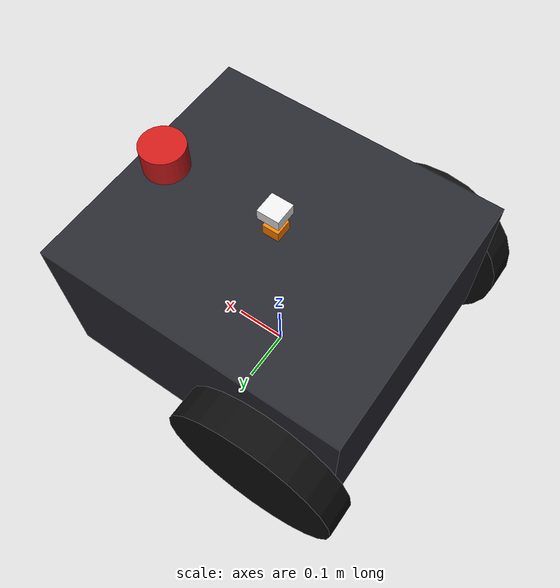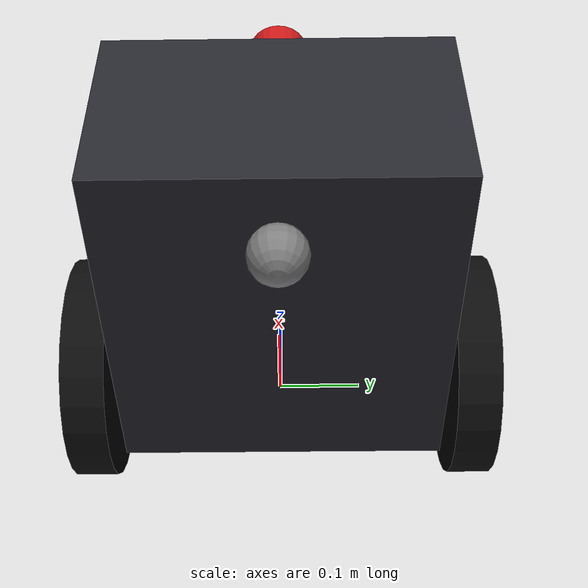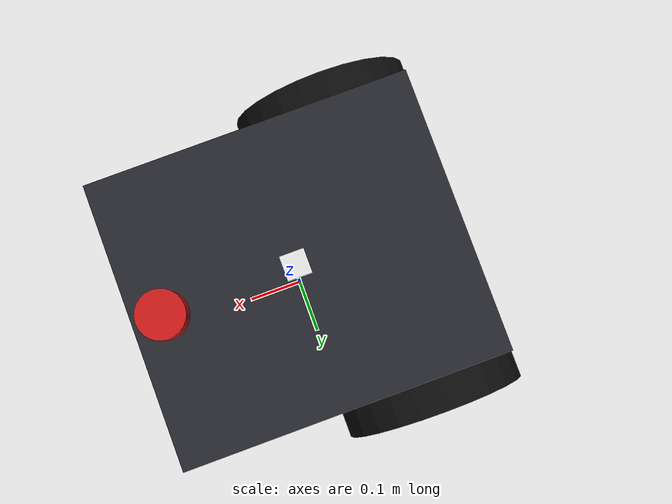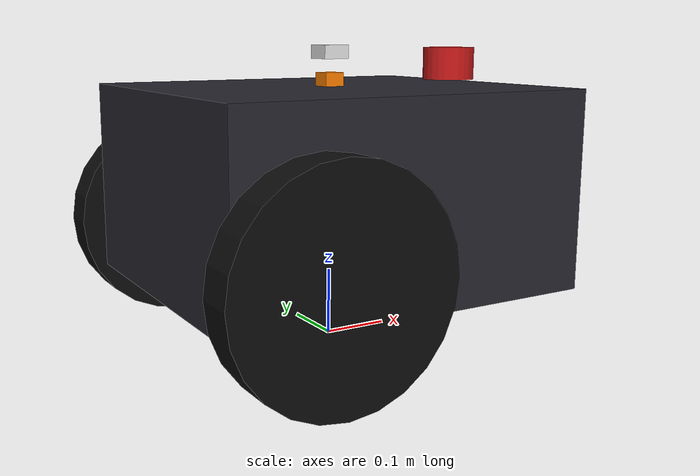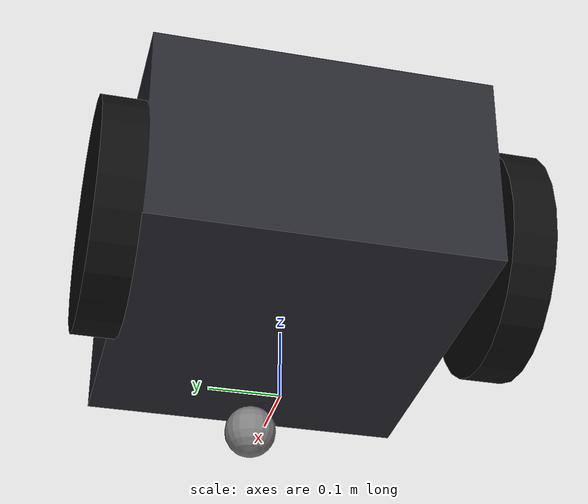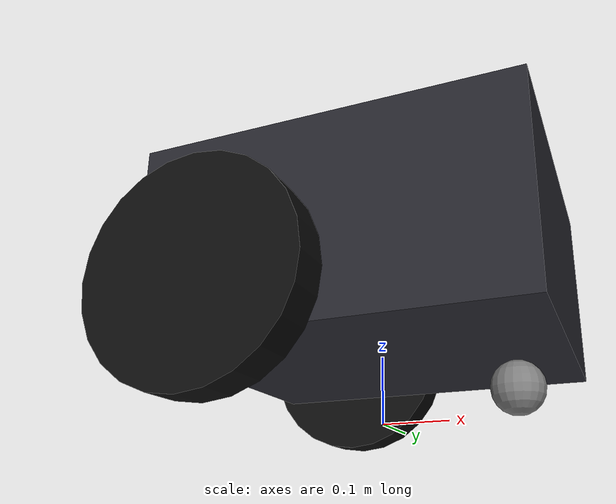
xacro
<?xml version="1.0"?>
<robot name="mercury" xmlns:xacro="http://www.ros.org/wiki/xacro">

  <!-- ================= BASE CHASSIS ================= -->
  <!-- Dimensions: length=55cm (0.55m), width=48cm (0.48m), height=29cm (0.29m) -->
  <!-- Ground clearance: 9cm (0.09m) -->
  <!-- Center of chassis box z = 0.09 + (0.29 / 2) = 0.235m -->
  <link name="base_link">
    <visual>
      <geometry>
        <box size="0.55 0.48 0.29"/>
      </geometry>
      <origin xyz="0 0 0.235" rpy="0 0 0"/>
      <material name="chassis_color">
        <color rgba="0.15 0.15 0.18 1.0"/>
      </material>
    </visual>
  </link>

  <!-- ================= LEFT DRIVE WHEEL ================= -->
  <!-- Diameter = 32cm -> radius = 16cm (0.16m), width = 6cm (0.06m) -->
  <!-- Wheel center z = 0.16m (touches ground at z=0) -->
  <!-- Separation = 54cm (0.54m) -> y = +0.27m -->
  <!-- Note: joint type is "fixed" because there are no physical wheel encoders. -->
  <!-- This allows robot_state_publisher to broadcast the static TF without waiting for encoder /joint_states -->
  <link name="left_wheel_link">
    <visual>
      <origin xyz="0 0 0" rpy="1.5708 0 0"/>
      <geometry>
        <cylinder radius="0.16" length="0.06"/>
      </geometry>
      <material name="wheel_black">
        <color rgba="0.05 0.05 0.05 1.0"/>
      </material>
    </visual>
  </link>

  <joint name="left_wheel_joint" type="fixed">
    <parent link="base_link"/>
    <child link="left_wheel_link"/>
    <origin xyz="-0.15 0.27 0.16" rpy="0 0 0"/>
  </joint>

  <!-- ================= RIGHT DRIVE WHEEL ================= -->
  <!-- Separation = 54cm (0.54m) -> y = -0.27m -->
  <link name="right_wheel_link">
    <visual>
      <origin xyz="0 0 0" rpy="1.5708 0 0"/>
      <geometry>
        <cylinder radius="0.16" length="0.06"/>
      </geometry>
      <material name="wheel_black">
        <color rgba="0.05 0.05 0.05 1.0"/>
      </material>
    </visual>
  </link>

  <joint name="right_wheel_joint" type="fixed">
    <parent link="base_link"/>
    <child link="right_wheel_link"/>
    <origin xyz="-0.15 -0.27 0.16" rpy="0 0 0"/>
  </joint>

  <!-- ================= FRONT CASTOR WHEEL ================= -->
  <!-- Castor radius = 3.9cm (0.039m), touches ground at z=0 (origin z = 0.039m) -->
  <!-- Positioned at front: x = +0.20m, y = 0.0m -->
  <link name="castor_wheel_link">
    <visual>
      <geometry>
        <sphere radius="0.039"/>
      </geometry>
      <origin xyz="0 0 0" rpy="0 0 0"/>
      <material name="castor_gray">
        <color rgba="0.5 0.5 0.5 1.0"/>
      </material>
    </visual>
  </link>

  <joint name="castor_wheel_joint" type="fixed">
    <parent link="base_link"/>
    <child link="castor_wheel_link"/>
    <origin xyz="0.20 0.0 0.039" rpy="0 0 0"/>
  </joint>

  <!-- ================= RPLIDAR (laser_link) ================= -->
  <!-- Mounted on top-front of chassis: z = 0.09 + 0.29 + 0.03 = 0.41m -->
  <link name="laser_link">
    <visual>
      <geometry>
        <cylinder length="0.05" radius="0.04"/>
      </geometry>
      <origin xyz="0 0 0" rpy="0 0 0"/>
      <material name="lidar_red">
        <color rgba="0.8 0.1 0.1 1.0"/>
      </material>
    </visual>
  </link>

  <joint name="laser_joint" type="fixed">
    <parent link="base_link"/>
    <child link="laser_link"/>
    <origin xyz="0.22 0.0 0.41" rpy="0 0 3.14159"/>
  </joint>

  <!-- ================= IMU FRAME ================= -->
  <!-- Fixed frame for IMU (ESP32-S3 / RealSense) -->
  <link name="imu_link">
    <visual>
      <geometry>
        <box size="0.03 0.03 0.02"/>
      </geometry>
      <origin xyz="0 0 0" rpy="0 0 0"/>
      <material name="imu_orange">
        <color rgba="1.0 0.5 0.0 1.0"/>
      </material>
    </visual>
  </link>

  <joint name="imu_joint" type="fixed">
    <parent link="base_link"/>
    <child link="imu_link"/>
    <origin xyz="0.0 0.0 0.39" rpy="0 0 0"/>
  </joint>

  <!-- ================= GPS FRAME ================= -->
  <!-- Mounted on top: z = 0.43m -->
  <link name="gps_link">
    <visual>
      <geometry>
        <box size="0.04 0.04 0.02"/>
      </geometry>
      <origin xyz="0 0 0" rpy="0 0 0"/>
      <material name="gps_white">
        <color rgba="0.9 0.9 0.9 1.0"/>
      </material>
    </visual>
  </link>

  <joint name="gps_joint" type="fixed">
    <parent link="base_link"/>
    <child link="gps_link"/>
    <origin xyz="0.0 0.0 0.43" rpy="0 0 0"/>
  </joint>

  <!-- ================= REALSENSE CAMERA BODY ================= -->
  <link name="camera_link"/>

  <joint name="camera_mount_joint" type="fixed">
    <parent link="base_link"/>
    <child link="camera_link"/>
    <origin xyz="0.15 0.0 0.38" rpy="0 0 0"/>
  </joint>

  <!-- ================= CAMERA IMU FRAMES ================= -->
  <link name="camera_imu_frame"/>

  <joint name="camera_imu_joint" type="fixed">
    <parent link="camera_link"/>
    <child link="camera_imu_frame"/>
    <origin xyz="0 0 0" rpy="0 0 0"/>
  </joint>

  <!-- Optical frame rotation: X right, Y down, Z forward -->
  <link name="camera_imu_optical_frame"/>

  <joint name="camera_imu_optical_joint" type="fixed">
    <parent link="camera_imu_frame"/>
    <child link="camera_imu_optical_frame"/>
    <origin xyz="0 0 0" rpy="-1.5708 0 -1.5708"/>
  </joint>

</robot>
